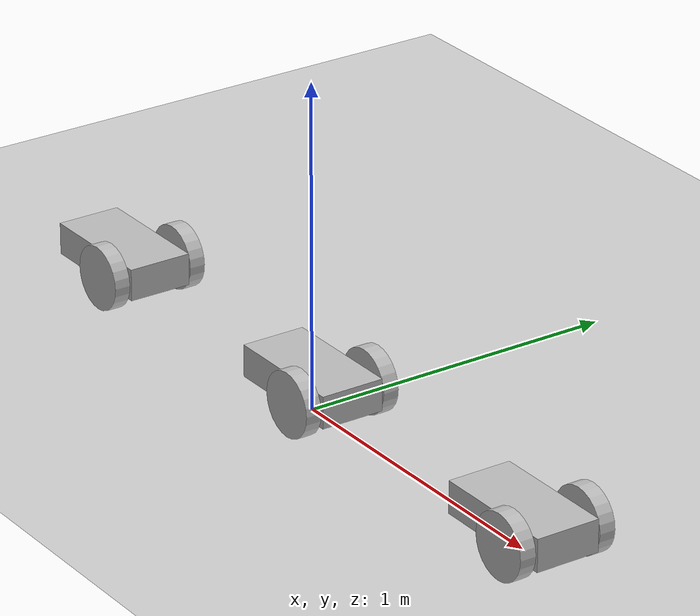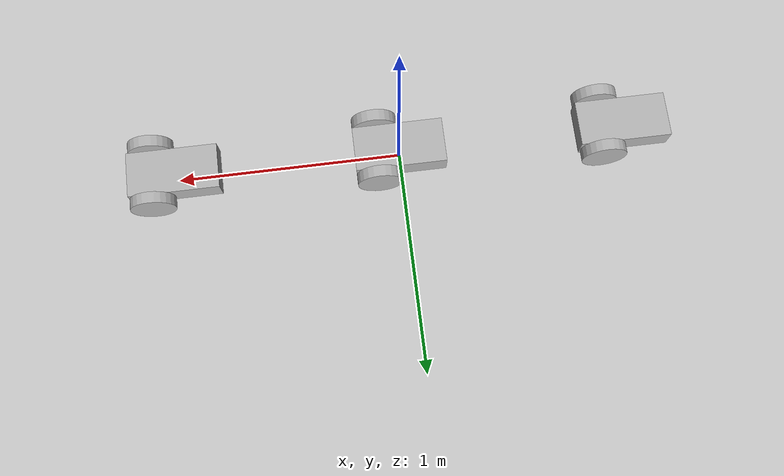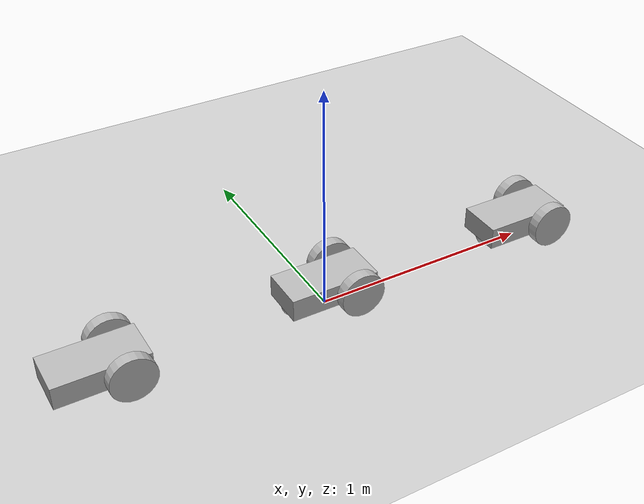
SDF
<?xml version="1.0" ?>
<sdf version="1.5">
  <world name="default">
    <!-- A global light source -->
    <include>
      <uri>model://sun</uri>
    </include>
    <!-- A ground plane -->
    <include>
      <uri>model://ground_plane</uri>
    </include>

    <model name="can1">
        <include>
          <pose frame=''>-1 0 0 0 0 0</pose>
          <uri>model://my_robot</uri>
        </include>

        <plugin name="robot_control" filename="libmodel_plugin.so">
            <path>12,13</path>
        </plugin>
    </model>

    <model name="can2">
        <include>
          <pose frame=''>0 0 0 0 0 0</pose>
          <uri>model://my_robot</uri>
        </include>

        <plugin name="robot_control1" filename="libmodel_plugin.so">
            <path>12,13</path>
        </plugin>
    </model>

    <model name="can3">
        <include>
          <pose frame=''>1 0 0 0 0 0</pose>
          <uri>model://my_robot</uri>
        </include>

    </model>

  </world>
</sdf>

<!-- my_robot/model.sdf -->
<sdf version='1.4'>
  <model name="my_robot">
      <static>false</static>

        <link name="link">
          <pose>0.15 0 -0.05 0 0 0</pose>
            <collision name='collision'>
                <geometry>
                    <sphere>
                        <radius>.05</radius>
                    </sphere>
                </geometry>
            </collision>
          <sensor name="logical_camera" type="logical_camera">
            <logical_camera>
              <near>0.55</near>
              <far>2.5</far>
              <horizontal_fov>1.05</horizontal_fov>
              <aspect_ratio>1.8</aspect_ratio>
            </logical_camera>

            <visualize>true</visualize>
            <always_on>true</always_on>
            <update_rate>10</update_rate>

            <plugin name="robot_control1" filename="liblogical_sensor_plugin.so">

            </plugin>
          </sensor>
      </link>
      <link name='chassis'>
        <pose>0 0 .1 0 0 0</pose>
        <collision name='collision'>
          <geometry>
            <box>
              <size>.4 .2 .1</size>
            </box>
          </geometry>
        </collision>

        <visual name='visual'>
          <geometry>
            <box>
              <size>.4 .2 .1</size>
            </box>
          </geometry>
        </visual>

        <collision name='caster_collision'>
          <pose>-0.15 0 -0.05 0 0 0</pose>
          <geometry>
            <sphere>
            <radius>.05</radius>
          </sphere>
        </geometry>

        <surface>
          <friction>
            <ode>
              <mu>0</mu>
              <mu2>0</mu2>
              <slip1>1.0</slip1>
              <slip2>1.0</slip2>
            </ode>
          </friction>
        </surface>
      </collision>

      <visual name='caster_visual'>
        <pose>-0.15 0 -0.05 0 0 0</pose>
        <geometry>
          <sphere>
            <radius>.05</radius>
          </sphere>
        </geometry>
      </visual>
    </link>
    <link name="left_wheel">
      <pose>0.1 0.13 0.1 0 1.5707 1.5707</pose>
      <collision name="collision">
        <geometry>
          <cylinder>
            <radius>.1</radius>
            <length>.05</length>
          </cylinder>
        </geometry>
      </collision>
      <visual name="visual">
        <geometry>
          <cylinder>
            <radius>.1</radius>
            <length>.05</length>
          </cylinder>
        </geometry>
      </visual>
    </link>

    <link name="right_wheel">
      <pose>0.1 -0.13 0.1 0 1.5707 1.5707</pose>
      <collision name="collision">
        <geometry>
          <cylinder>
            <radius>.1</radius>
            <length>.05</length>
          </cylinder>
        </geometry>
      </collision>
      <visual name="visual">
        <geometry>
          <cylinder>
            <radius>.1</radius>
            <length>.05</length>
          </cylinder>
        </geometry>
      </visual>
    </link>
    <joint type="revolute" name="left_wheel_hinge">
      <pose>0 0 -0.03 0 0 0</pose>
      <child>left_wheel</child>
      <parent>chassis</parent>
      <axis>
        <xyz>0 1 0</xyz>
      </axis>
    </joint>
    <joint type="revolute" name="right_wheel_hinge">
      <pose>0 0 0.03 0 0 0</pose>
      <child>right_wheel</child>
      <parent>chassis</parent>
      <axis>
        <xyz>0 1 0</xyz>
      </axis>
    </joint>
  </model>
</sdf>
